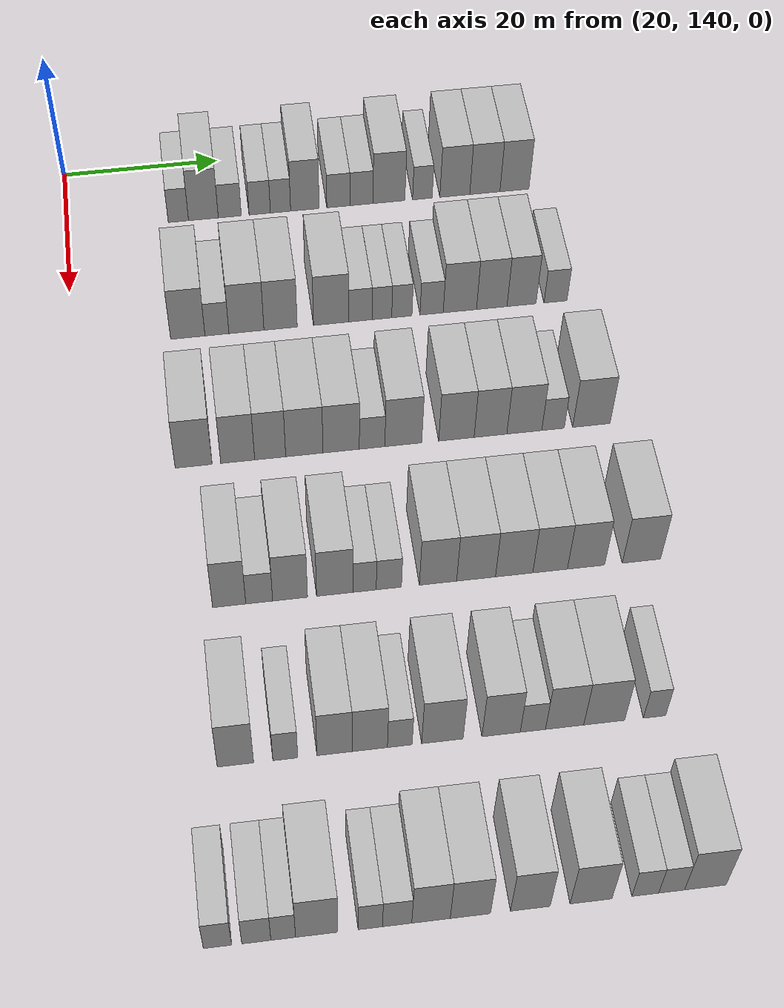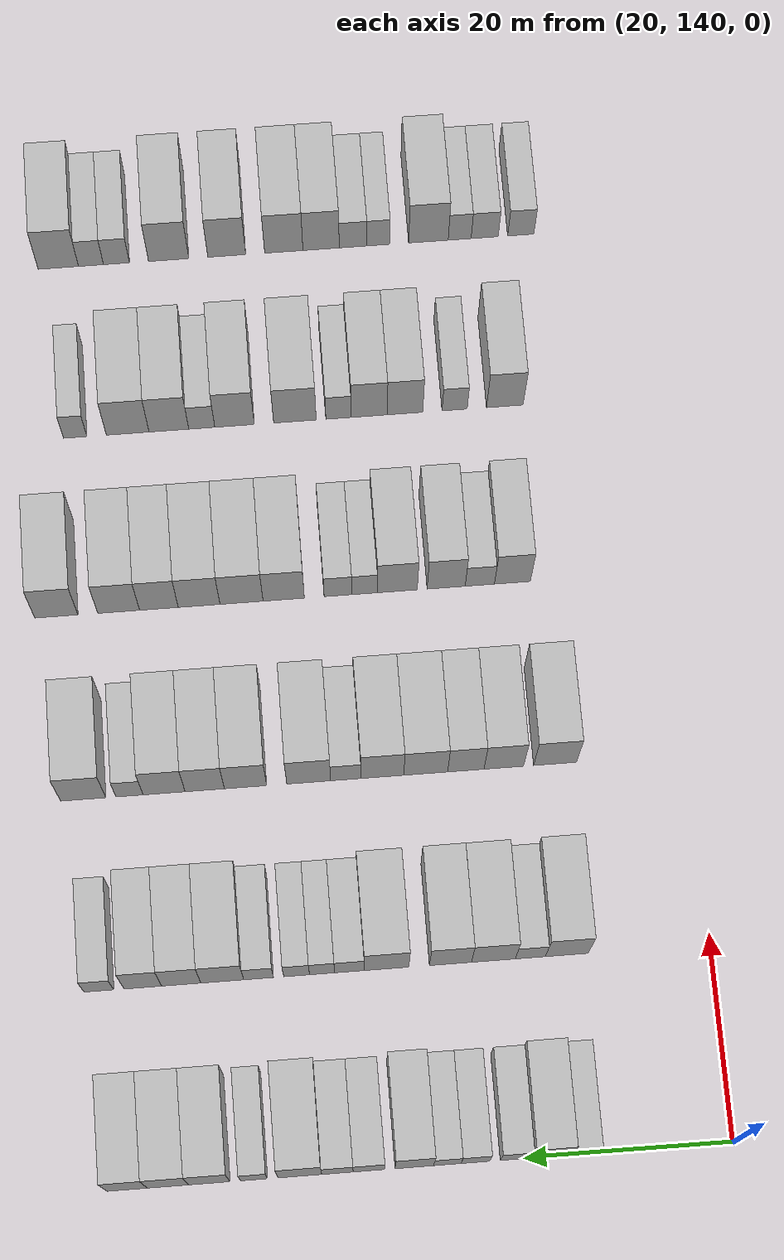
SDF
<sdf version="1.6">
 <world name="default">
  <model name="building_124">
   <static>1</static>
   <pose>25.0000 154.1969 0 0.000000 0.000000 0.000000</pose>
   <link name="link">
    <pose>0 0 3.00 0 0 0</pose>
    <collision name="collision"><geometry><box><size>10.0000 2.5885 6.0000</size></box></geometry></collision>
    <visual name="visual">
     <cast_shadows>0</cast_shadows>
     <geometry><box><size>10.0000 2.5885 6.0000</size></box></geometry>
     <material>
      <script>
       <uri>model://HANNAS_wall/materials/scripts</uri>
       <uri>model://HANNAS_wall/materials/textures</uri>
       <name>vrc/HANNAS_wall</name>
      </script>
     </material>
    </visual>
   </link>
  </model>
  <model name="building_125">
   <static>1</static>
   <pose>25.0000 157.3900 0 0.000000 0.000000 0.000000</pose>
   <link name="link">
    <pose>0 0 4.50 0 0 0</pose>
    <collision name="collision"><geometry><box><size>10.0000 3.7978 9.0000</size></box></geometry></collision>
    <visual name="visual">
     <cast_shadows>0</cast_shadows>
     <geometry><box><size>10.0000 3.7978 9.0000</size></box></geometry>
     <material>
      <script>
       <uri>model://HANNAS_wall/materials/scripts</uri>
       <uri>model://HANNAS_wall/materials/textures</uri>
       <name>vrc/HANNAS_wall</name>
      </script>
     </material>
    </visual>
   </link>
  </model>
  <model name="building_126">
   <static>1</static>
   <pose>25.0000 160.7644 0 0.000000 0.000000 0.000000</pose>
   <link name="link">
    <pose>0 0 3.00 0 0 0</pose>
    <collision name="collision"><geometry><box><size>10.0000 2.9510 6.0000</size></box></geometry></collision>
    <visual name="visual">
     <cast_shadows>0</cast_shadows>
     <geometry><box><size>10.0000 2.9510 6.0000</size></box></geometry>
     <material>
      <script>
       <uri>model://HANNAS_wall/materials/scripts</uri>
       <uri>model://HANNAS_wall/materials/textures</uri>
       <name>vrc/HANNAS_wall</name>
      </script>
     </material>
    </visual>
   </link>
  </model>
  <model name="building_127">
   <static>1</static>
   <pose>25.0000 164.6057 0 0.000000 0.000000 0.000000</pose>
   <link name="link">
    <pose>0 0 3.00 0 0 0</pose>
    <collision name="collision"><geometry><box><size>10.0000 2.7316 6.0000</size></box></geometry></collision>
    <visual name="visual">
     <cast_shadows>0</cast_shadows>
     <geometry><box><size>10.0000 2.7316 6.0000</size></box></geometry>
     <material>
      <script>
       <uri>model://HANNAS_wall/materials/scripts</uri>
       <uri>model://HANNAS_wall/materials/textures</uri>
       <name>vrc/HANNAS_wall</name>
      </script>
     </material>
    </visual>
   </link>
  </model>
  <model name="building_128">
   <static>1</static>
   <pose>25.0000 167.2755 0 0.000000 0.000000 0.000000</pose>
   <link name="link">
    <pose>0 0 3.00 0 0 0</pose>
    <collision name="collision"><geometry><box><size>10.0000 2.6079 6.0000</size></box></geometry></collision>
    <visual name="visual">
     <cast_shadows>0</cast_shadows>
     <geometry><box><size>10.0000 2.6079 6.0000</size></box></geometry>
     <material>
      <script>
       <uri>model://HANNAS_wall/materials/scripts</uri>
       <uri>model://HANNAS_wall/materials/textures</uri>
       <name>vrc/HANNAS_wall</name>
      </script>
     </material>
    </visual>
   </link>
  </model>
  <model name="building_129">
   <static>1</static>
   <pose>25.0000 170.4129 0 0.000000 0.000000 0.000000</pose>
   <link name="link">
    <pose>0 0 4.50 0 0 0</pose>
    <collision name="collision"><geometry><box><size>10.0000 3.6670 9.0000</size></box></geometry></collision>
    <visual name="visual">
     <cast_shadows>0</cast_shadows>
     <geometry><box><size>10.0000 3.6670 9.0000</size></box></geometry>
     <material>
      <script>
       <uri>model://HANNAS_wall/materials/scripts</uri>
       <uri>model://HANNAS_wall/materials/textures</uri>
       <name>vrc/HANNAS_wall</name>
      </script>
     </material>
    </visual>
   </link>
  </model>
  <model name="building_130">
   <static>1</static>
   <pose>25.0000 174.7386 0 0.000000 0.000000 0.000000</pose>
   <link name="link">
    <pose>0 0 3.00 0 0 0</pose>
    <collision name="collision"><geometry><box><size>10.0000 2.9844 6.0000</size></box></geometry></collision>
    <visual name="visual">
     <cast_shadows>0</cast_shadows>
     <geometry><box><size>10.0000 2.9844 6.0000</size></box></geometry>
     <material>
      <script>
       <uri>model://HANNAS_wall/materials/scripts</uri>
       <uri>model://HANNAS_wall/materials/textures</uri>
       <name>vrc/HANNAS_wall</name>
      </script>
     </material>
    </visual>
   </link>
  </model>
  <model name="building_131">
   <static>1</static>
   <pose>25.0000 177.7188 0 0.000000 0.000000 0.000000</pose>
   <link name="link">
    <pose>0 0 3.00 0 0 0</pose>
    <collision name="collision"><geometry><box><size>10.0000 2.9760 6.0000</size></box></geometry></collision>
    <visual name="visual">
     <cast_shadows>0</cast_shadows>
     <geometry><box><size>10.0000 2.9760 6.0000</size></box></geometry>
     <material>
      <script>
       <uri>model://HANNAS_wall/materials/scripts</uri>
       <uri>model://HANNAS_wall/materials/textures</uri>
       <name>vrc/HANNAS_wall</name>
      </script>
     </material>
    </visual>
   </link>
  </model>
  <model name="building_132">
   <static>1</static>
   <pose>25.0000 181.2805 0 0.000000 0.000000 0.000000</pose>
   <link name="link">
    <pose>0 0 4.50 0 0 0</pose>
    <collision name="collision"><geometry><box><size>10.0000 4.1474 9.0000</size></box></geometry></collision>
    <visual name="visual">
     <cast_shadows>0</cast_shadows>
     <geometry><box><size>10.0000 4.1474 9.0000</size></box></geometry>
     <material>
      <script>
       <uri>model://HANNAS_wall/materials/scripts</uri>
       <uri>model://HANNAS_wall/materials/textures</uri>
       <name>vrc/HANNAS_wall</name>
      </script>
     </material>
    </visual>
   </link>
  </model>
  <model name="building_133">
   <static>1</static>
   <pose>25.0000 185.6301 0 0.000000 0.000000 0.000000</pose>
   <link name="link">
    <pose>0 0 3.00 0 0 0</pose>
    <collision name="collision"><geometry><box><size>10.0000 2.5518 6.0000</size></box></geometry></collision>
    <visual name="visual">
     <cast_shadows>0</cast_shadows>
     <geometry><box><size>10.0000 2.5518 6.0000</size></box></geometry>
     <material>
      <script>
       <uri>model://HANNAS_wall/materials/scripts</uri>
       <uri>model://HANNAS_wall/materials/textures</uri>
       <name>vrc/HANNAS_wall</name>
      </script>
     </material>
    </visual>
   </link>
  </model>
  <model name="building_134">
   <static>1</static>
   <pose>25.0000 189.8566 0 0.000000 0.000000 0.000000</pose>
   <link name="link">
    <pose>0 0 4.50 0 0 0</pose>
    <collision name="collision"><geometry><box><size>10.0000 3.9012 9.0000</size></box></geometry></collision>
    <visual name="visual">
     <cast_shadows>0</cast_shadows>
     <geometry><box><size>10.0000 3.9012 9.0000</size></box></geometry>
     <material>
      <script>
       <uri>model://HANNAS_wall/materials/scripts</uri>
       <uri>model://HANNAS_wall/materials/textures</uri>
       <name>vrc/HANNAS_wall</name>
      </script>
     </material>
    </visual>
   </link>
  </model>
  <model name="building_135">
   <static>1</static>
   <pose>25.0000 193.7774 0 0.000000 0.000000 0.000000</pose>
   <link name="link">
    <pose>0 0 4.50 0 0 0</pose>
    <collision name="collision"><geometry><box><size>10.0000 3.9404 9.0000</size></box></geometry></collision>
    <visual name="visual">
     <cast_shadows>0</cast_shadows>
     <geometry><box><size>10.0000 3.9404 9.0000</size></box></geometry>
     <material>
      <script>
       <uri>model://HANNAS_wall/materials/scripts</uri>
       <uri>model://HANNAS_wall/materials/textures</uri>
       <name>vrc/HANNAS_wall</name>
      </script>
     </material>
    </visual>
   </link>
  </model>
  <model name="building_136">
   <static>1</static>
   <pose>25.0000 197.6484 0 0.000000 0.000000 0.000000</pose>
   <link name="link">
    <pose>0 0 4.50 0 0 0</pose>
    <collision name="collision"><geometry><box><size>10.0000 3.8018 9.0000</size></box></geometry></collision>
    <visual name="visual">
     <cast_shadows>0</cast_shadows>
     <geometry><box><size>10.0000 3.8018 9.0000</size></box></geometry>
     <material>
      <script>
       <uri>model://HANNAS_wall/materials/scripts</uri>
       <uri>model://HANNAS_wall/materials/textures</uri>
       <name>vrc/HANNAS_wall</name>
      </script>
     </material>
    </visual>
   </link>
  </model>
  <model name="building_296">
   <static>1</static>
   <pose>44.0000 154.0123 0 0.000000 0.000000 0.000000</pose>
   <link name="link">
    <pose>0 0 4.50 0 0 0</pose>
    <collision name="collision"><geometry><box><size>10.0000 4.1790 9.0000</size></box></geometry></collision>
    <visual name="visual">
     <cast_shadows>0</cast_shadows>
     <geometry><box><size>10.0000 4.1790 9.0000</size></box></geometry>
     <material>
      <script>
       <uri>model://HANNAS_wall/materials/scripts</uri>
       <uri>model://HANNAS_wall/materials/textures</uri>
       <name>vrc/HANNAS_wall</name>
      </script>
     </material>
    </visual>
   </link>
  </model>
  <model name="building_297">
   <static>1</static>
   <pose>44.0000 157.5596 0 0.000000 0.000000 0.000000</pose>
   <link name="link">
    <pose>0 0 3.00 0 0 0</pose>
    <collision name="collision"><geometry><box><size>10.0000 2.9157 6.0000</size></box></geometry></collision>
    <visual name="visual">
     <cast_shadows>0</cast_shadows>
     <geometry><box><size>10.0000 2.9157 6.0000</size></box></geometry>
     <material>
      <script>
       <uri>model://HANNAS_wall/materials/scripts</uri>
       <uri>model://HANNAS_wall/materials/textures</uri>
       <name>vrc/HANNAS_wall</name>
      </script>
     </material>
    </visual>
   </link>
  </model>
  <model name="building_298">
   <static>1</static>
   <pose>44.0000 161.1566 0 0.000000 0.000000 0.000000</pose>
   <link name="link">
    <pose>0 0 4.50 0 0 0</pose>
    <collision name="collision"><geometry><box><size>10.0000 4.2783 9.0000</size></box></geometry></collision>
    <visual name="visual">
     <cast_shadows>0</cast_shadows>
     <geometry><box><size>10.0000 4.2783 9.0000</size></box></geometry>
     <material>
      <script>
       <uri>model://HANNAS_wall/materials/scripts</uri>
       <uri>model://HANNAS_wall/materials/textures</uri>
       <name>vrc/HANNAS_wall</name>
      </script>
     </material>
    </visual>
   </link>
  </model>
  <model name="building_299">
   <static>1</static>
   <pose>44.0000 165.3366 0 0.000000 0.000000 0.000000</pose>
   <link name="link">
    <pose>0 0 4.50 0 0 0</pose>
    <collision name="collision"><geometry><box><size>10.0000 4.0816 9.0000</size></box></geometry></collision>
    <visual name="visual">
     <cast_shadows>0</cast_shadows>
     <geometry><box><size>10.0000 4.0816 9.0000</size></box></geometry>
     <material>
      <script>
       <uri>model://HANNAS_wall/materials/scripts</uri>
       <uri>model://HANNAS_wall/materials/textures</uri>
       <name>vrc/HANNAS_wall</name>
      </script>
     </material>
    </visual>
   </link>
  </model>
  <model name="building_300">
   <static>1</static>
   <pose>44.0000 171.5460 0 0.000000 0.000000 0.000000</pose>
   <link name="link">
    <pose>0 0 4.50 0 0 0</pose>
    <collision name="collision"><geometry><box><size>10.0000 4.3372 9.0000</size></box></geometry></collision>
    <visual name="visual">
     <cast_shadows>0</cast_shadows>
     <geometry><box><size>10.0000 4.3372 9.0000</size></box></geometry>
     <material>
      <script>
       <uri>model://HANNAS_wall/materials/scripts</uri>
       <uri>model://HANNAS_wall/materials/textures</uri>
       <name>vrc/HANNAS_wall</name>
      </script>
     </material>
    </visual>
   </link>
  </model>
  <model name="building_301">
   <static>1</static>
   <pose>44.0000 175.1518 0 0.000000 0.000000 0.000000</pose>
   <link name="link">
    <pose>0 0 3.00 0 0 0</pose>
    <collision name="collision"><geometry><box><size>10.0000 2.8745 6.0000</size></box></geometry></collision>
    <visual name="visual">
     <cast_shadows>0</cast_shadows>
     <geometry><box><size>10.0000 2.8745 6.0000</size></box></geometry>
     <material>
      <script>
       <uri>model://HANNAS_wall/materials/scripts</uri>
       <uri>model://HANNAS_wall/materials/textures</uri>
       <name>vrc/HANNAS_wall</name>
      </script>
     </material>
    </visual>
   </link>
  </model>
  <model name="building_302">
   <static>1</static>
   <pose>44.0000 177.8020 0 0.000000 0.000000 0.000000</pose>
   <link name="link">
    <pose>0 0 3.00 0 0 0</pose>
    <collision name="collision"><geometry><box><size>10.0000 2.4257 6.0000</size></box></geometry></collision>
    <visual name="visual">
     <cast_shadows>0</cast_shadows>
     <geometry><box><size>10.0000 2.4257 6.0000</size></box></geometry>
     <material>
      <script>
       <uri>model://HANNAS_wall/materials/scripts</uri>
       <uri>model://HANNAS_wall/materials/textures</uri>
       <name>vrc/HANNAS_wall</name>
      </script>
     </material>
    </visual>
   </link>
  </model>
  <model name="building_303">
   <static>1</static>
   <pose>44.0000 180.2664 0 0.000000 0.000000 0.000000</pose>
   <link name="link">
    <pose>0 0 3.00 0 0 0</pose>
    <collision name="collision"><geometry><box><size>10.0000 2.5031 6.0000</size></box></geometry></collision>
    <visual name="visual">
     <cast_shadows>0</cast_shadows>
     <geometry><box><size>10.0000 2.5031 6.0000</size></box></geometry>
     <material>
      <script>
       <uri>model://HANNAS_wall/materials/scripts</uri>
       <uri>model://HANNAS_wall/materials/textures</uri>
       <name>vrc/HANNAS_wall</name>
      </script>
     </material>
    </visual>
   </link>
  </model>
  <model name="building_304">
   <static>1</static>
   <pose>44.0000 183.9565 0 0.000000 0.000000 0.000000</pose>
   <link name="link">
    <pose>0 0 3.00 0 0 0</pose>
    <collision name="collision"><geometry><box><size>10.0000 2.8772 6.0000</size></box></geometry></collision>
    <visual name="visual">
     <cast_shadows>0</cast_shadows>
     <geometry><box><size>10.0000 2.8772 6.0000</size></box></geometry>
     <material>
      <script>
       <uri>model://HANNAS_wall/materials/scripts</uri>
       <uri>model://HANNAS_wall/materials/textures</uri>
       <name>vrc/HANNAS_wall</name>
      </script>
     </material>
    </visual>
   </link>
  </model>
  <model name="building_305">
   <static>1</static>
   <pose>44.0000 187.4661 0 0.000000 0.000000 0.000000</pose>
   <link name="link">
    <pose>0 0 4.50 0 0 0</pose>
    <collision name="collision"><geometry><box><size>10.0000 4.1420 9.0000</size></box></geometry></collision>
    <visual name="visual">
     <cast_shadows>0</cast_shadows>
     <geometry><box><size>10.0000 4.1420 9.0000</size></box></geometry>
     <material>
      <script>
       <uri>model://HANNAS_wall/materials/scripts</uri>
       <uri>model://HANNAS_wall/materials/textures</uri>
       <name>vrc/HANNAS_wall</name>
      </script>
     </material>
    </visual>
   </link>
  </model>
  <model name="building_306">
   <static>1</static>
   <pose>44.0000 191.4358 0 0.000000 0.000000 0.000000</pose>
   <link name="link">
    <pose>0 0 4.50 0 0 0</pose>
    <collision name="collision"><geometry><box><size>10.0000 3.7973 9.0000</size></box></geometry></collision>
    <visual name="visual">
     <cast_shadows>0</cast_shadows>
     <geometry><box><size>10.0000 3.7973 9.0000</size></box></geometry>
     <material>
      <script>
       <uri>model://HANNAS_wall/materials/scripts</uri>
       <uri>model://HANNAS_wall/materials/textures</uri>
       <name>vrc/HANNAS_wall</name>
      </script>
     </material>
    </visual>
   </link>
  </model>
  <model name="building_307">
   <static>1</static>
   <pose>44.0000 195.1491 0 0.000000 0.000000 0.000000</pose>
   <link name="link">
    <pose>0 0 4.50 0 0 0</pose>
    <collision name="collision"><geometry><box><size>10.0000 3.6293 9.0000</size></box></geometry></collision>
    <visual name="visual">
     <cast_shadows>0</cast_shadows>
     <geometry><box><size>10.0000 3.6293 9.0000</size></box></geometry>
     <material>
      <script>
       <uri>model://HANNAS_wall/materials/scripts</uri>
       <uri>model://HANNAS_wall/materials/textures</uri>
       <name>vrc/HANNAS_wall</name>
      </script>
     </material>
    </visual>
   </link>
  </model>
  <model name="building_308">
   <static>1</static>
   <pose>44.0000 199.4026 0 0.000000 0.000000 0.000000</pose>
   <link name="link">
    <pose>0 0 3.00 0 0 0</pose>
    <collision name="collision"><geometry><box><size>10.0000 2.8777 6.0000</size></box></geometry></collision>
    <visual name="visual">
     <cast_shadows>0</cast_shadows>
     <geometry><box><size>10.0000 2.8777 6.0000</size></box></geometry>
     <material>
      <script>
       <uri>model://HANNAS_wall/materials/scripts</uri>
       <uri>model://HANNAS_wall/materials/textures</uri>
       <name>vrc/HANNAS_wall</name>
      </script>
     </material>
    </visual>
   </link>
  </model>
  <model name="building_462">
   <static>1</static>
   <pose>63.0000 153.3006 0 0.000000 0.000000 0.000000</pose>
   <link name="link">
    <pose>0 0 4.50 0 0 0</pose>
    <collision name="collision"><geometry><box><size>10.0000 4.2686 9.0000</size></box></geometry></collision>
    <visual name="visual">
     <cast_shadows>0</cast_shadows>
     <geometry><box><size>10.0000 4.2686 9.0000</size></box></geometry>
     <material>
      <script>
       <uri>model://HANNAS_wall/materials/scripts</uri>
       <uri>model://HANNAS_wall/materials/textures</uri>
       <name>vrc/HANNAS_wall</name>
      </script>
     </material>
    </visual>
   </link>
  </model>
  <model name="building_463">
   <static>1</static>
   <pose>63.0000 158.4048 0 0.000000 0.000000 0.000000</pose>
   <link name="link">
    <pose>0 0 4.50 0 0 0</pose>
    <collision name="collision"><geometry><box><size>10.0000 3.9400 9.0000</size></box></geometry></collision>
    <visual name="visual">
     <cast_shadows>0</cast_shadows>
     <geometry><box><size>10.0000 3.9400 9.0000</size></box></geometry>
     <material>
      <script>
       <uri>model://HANNAS_wall/materials/scripts</uri>
       <uri>model://HANNAS_wall/materials/textures</uri>
       <name>vrc/HANNAS_wall</name>
      </script>
     </material>
    </visual>
   </link>
  </model>
  <model name="building_464">
   <static>1</static>
   <pose>63.0000 162.1786 0 0.000000 0.000000 0.000000</pose>
   <link name="link">
    <pose>0 0 4.50 0 0 0</pose>
    <collision name="collision"><geometry><box><size>10.0000 3.6076 9.0000</size></box></geometry></collision>
    <visual name="visual">
     <cast_shadows>0</cast_shadows>
     <geometry><box><size>10.0000 3.6076 9.0000</size></box></geometry>
     <material>
      <script>
       <uri>model://HANNAS_wall/materials/scripts</uri>
       <uri>model://HANNAS_wall/materials/textures</uri>
       <name>vrc/HANNAS_wall</name>
      </script>
     </material>
    </visual>
   </link>
  </model>
  <model name="building_465">
   <static>1</static>
   <pose>63.0000 166.1559 0 0.000000 0.000000 0.000000</pose>
   <link name="link">
    <pose>0 0 4.50 0 0 0</pose>
    <collision name="collision"><geometry><box><size>10.0000 4.3470 9.0000</size></box></geometry></collision>
    <visual name="visual">
     <cast_shadows>0</cast_shadows>
     <geometry><box><size>10.0000 4.3470 9.0000</size></box></geometry>
     <material>
      <script>
       <uri>model://HANNAS_wall/materials/scripts</uri>
       <uri>model://HANNAS_wall/materials/textures</uri>
       <name>vrc/HANNAS_wall</name>
      </script>
     </material>
    </visual>
   </link>
  </model>
  <model name="building_466">
   <static>1</static>
   <pose>63.0000 170.4562 0 0.000000 0.000000 0.000000</pose>
   <link name="link">
    <pose>0 0 4.50 0 0 0</pose>
    <collision name="collision"><geometry><box><size>10.0000 4.2536 9.0000</size></box></geometry></collision>
    <visual name="visual">
     <cast_shadows>0</cast_shadows>
     <geometry><box><size>10.0000 4.2536 9.0000</size></box></geometry>
     <material>
      <script>
       <uri>model://HANNAS_wall/materials/scripts</uri>
       <uri>model://HANNAS_wall/materials/textures</uri>
       <name>vrc/HANNAS_wall</name>
      </script>
     </material>
    </visual>
   </link>
  </model>
  <model name="building_467">
   <static>1</static>
   <pose>63.0000 174.0810 0 0.000000 0.000000 0.000000</pose>
   <link name="link">
    <pose>0 0 3.00 0 0 0</pose>
    <collision name="collision"><geometry><box><size>10.0000 2.9959 6.0000</size></box></geometry></collision>
    <visual name="visual">
     <cast_shadows>0</cast_shadows>
     <geometry><box><size>10.0000 2.9959 6.0000</size></box></geometry>
     <material>
      <script>
       <uri>model://HANNAS_wall/materials/scripts</uri>
       <uri>model://HANNAS_wall/materials/textures</uri>
       <name>vrc/HANNAS_wall</name>
      </script>
     </material>
    </visual>
   </link>
  </model>
  <model name="building_468">
   <static>1</static>
   <pose>63.0000 177.7470 0 0.000000 0.000000 0.000000</pose>
   <link name="link">
    <pose>0 0 4.50 0 0 0</pose>
    <collision name="collision"><geometry><box><size>10.0000 4.3361 9.0000</size></box></geometry></collision>
    <visual name="visual">
     <cast_shadows>0</cast_shadows>
     <geometry><box><size>10.0000 4.3361 9.0000</size></box></geometry>
     <material>
      <script>
       <uri>model://HANNAS_wall/materials/scripts</uri>
       <uri>model://HANNAS_wall/materials/textures</uri>
       <name>vrc/HANNAS_wall</name>
      </script>
     </material>
    </visual>
   </link>
  </model>
  <model name="building_469">
   <static>1</static>
   <pose>63.0000 184.0059 0 0.000000 0.000000 0.000000</pose>
   <link name="link">
    <pose>0 0 4.50 0 0 0</pose>
    <collision name="collision"><geometry><box><size>10.0000 4.1819 9.0000</size></box></geometry></collision>
    <visual name="visual">
     <cast_shadows>0</cast_shadows>
     <geometry><box><size>10.0000 4.1819 9.0000</size></box></geometry>
     <material>
      <script>
       <uri>model://HANNAS_wall/materials/scripts</uri>
       <uri>model://HANNAS_wall/materials/textures</uri>
       <name>vrc/HANNAS_wall</name>
      </script>
     </material>
    </visual>
   </link>
  </model>
  <model name="building_470">
   <static>1</static>
   <pose>63.0000 188.0366 0 0.000000 0.000000 0.000000</pose>
   <link name="link">
    <pose>0 0 4.50 0 0 0</pose>
    <collision name="collision"><geometry><box><size>10.0000 3.8794 9.0000</size></box></geometry></collision>
    <visual name="visual">
     <cast_shadows>0</cast_shadows>
     <geometry><box><size>10.0000 3.8794 9.0000</size></box></geometry>
     <material>
      <script>
       <uri>model://HANNAS_wall/materials/scripts</uri>
       <uri>model://HANNAS_wall/materials/textures</uri>
       <name>vrc/HANNAS_wall</name>
      </script>
     </material>
    </visual>
   </link>
  </model>
  <model name="building_471">
   <static>1</static>
   <pose>63.0000 192.0502 0 0.000000 0.000000 0.000000</pose>
   <link name="link">
    <pose>0 0 4.50 0 0 0</pose>
    <collision name="collision"><geometry><box><size>10.0000 4.1479 9.0000</size></box></geometry></collision>
    <visual name="visual">
     <cast_shadows>0</cast_shadows>
     <geometry><box><size>10.0000 4.1479 9.0000</size></box></geometry>
     <material>
      <script>
       <uri>model://HANNAS_wall/materials/scripts</uri>
       <uri>model://HANNAS_wall/materials/textures</uri>
       <name>vrc/HANNAS_wall</name>
      </script>
     </material>
    </visual>
   </link>
  </model>
  <model name="building_472">
   <static>1</static>
   <pose>63.0000 195.4631 0 0.000000 0.000000 0.000000</pose>
   <link name="link">
    <pose>0 0 3.00 0 0 0</pose>
    <collision name="collision"><geometry><box><size>10.0000 2.6780 6.0000</size></box></geometry></collision>
    <visual name="visual">
     <cast_shadows>0</cast_shadows>
     <geometry><box><size>10.0000 2.6780 6.0000</size></box></geometry>
     <material>
      <script>
       <uri>model://HANNAS_wall/materials/scripts</uri>
       <uri>model://HANNAS_wall/materials/textures</uri>
       <name>vrc/HANNAS_wall</name>
      </script>
     </material>
    </visual>
   </link>
  </model>
  <model name="building_473">
   <static>1</static>
   <pose>63.0000 200.0333 0 0.000000 0.000000 0.000000</pose>
   <link name="link">
    <pose>0 0 4.50 0 0 0</pose>
    <collision name="collision"><geometry><box><size>10.0000 4.4623 9.0000</size></box></geometry></collision>
    <visual name="visual">
     <cast_shadows>0</cast_shadows>
     <geometry><box><size>10.0000 4.4623 9.0000</size></box></geometry>
     <material>
      <script>
       <uri>model://HANNAS_wall/materials/scripts</uri>
       <uri>model://HANNAS_wall/materials/textures</uri>
       <name>vrc/HANNAS_wall</name>
      </script>
     </material>
    </visual>
   </link>
  </model>
  <model name="building_638">
   <static>1</static>
   <pose>82.0000 155.7808 0 0.000000 0.000000 0.000000</pose>
   <link name="link">
    <pose>0 0 4.50 0 0 0</pose>
    <collision name="collision"><geometry><box><size>10.0000 3.6506 9.0000</size></box></geometry></collision>
    <visual name="visual">
     <cast_shadows>0</cast_shadows>
     <geometry><box><size>10.0000 3.6506 9.0000</size></box></geometry>
     <material>
      <script>
       <uri>model://HANNAS_wall/materials/scripts</uri>
       <uri>model://HANNAS_wall/materials/textures</uri>
       <name>vrc/HANNAS_wall</name>
      </script>
     </material>
    </visual>
   </link>
  </model>
  <model name="building_639">
   <static>1</static>
   <pose>82.0000 159.0854 0 0.000000 0.000000 0.000000</pose>
   <link name="link">
    <pose>0 0 3.00 0 0 0</pose>
    <collision name="collision"><geometry><box><size>10.0000 2.9586 6.0000</size></box></geometry></collision>
    <visual name="visual">
     <cast_shadows>0</cast_shadows>
     <geometry><box><size>10.0000 2.9586 6.0000</size></box></geometry>
     <material>
      <script>
       <uri>model://HANNAS_wall/materials/scripts</uri>
       <uri>model://HANNAS_wall/materials/textures</uri>
       <name>vrc/HANNAS_wall</name>
      </script>
     </material>
    </visual>
   </link>
  </model>
  <model name="building_640">
   <static>1</static>
   <pose>82.0000 162.4907 0 0.000000 0.000000 0.000000</pose>
   <link name="link">
    <pose>0 0 4.50 0 0 0</pose>
    <collision name="collision"><geometry><box><size>10.0000 3.8518 9.0000</size></box></geometry></collision>
    <visual name="visual">
     <cast_shadows>0</cast_shadows>
     <geometry><box><size>10.0000 3.8518 9.0000</size></box></geometry>
     <material>
      <script>
       <uri>model://HANNAS_wall/materials/scripts</uri>
       <uri>model://HANNAS_wall/materials/textures</uri>
       <name>vrc/HANNAS_wall</name>
      </script>
     </material>
    </visual>
   </link>
  </model>
  <model name="building_641">
   <static>1</static>
   <pose>82.0000 167.4409 0 0.000000 0.000000 0.000000</pose>
   <link name="link">
    <pose>0 0 4.50 0 0 0</pose>
    <collision name="collision"><geometry><box><size>10.0000 4.0486 9.0000</size></box></geometry></collision>
    <visual name="visual">
     <cast_shadows>0</cast_shadows>
     <geometry><box><size>10.0000 4.0486 9.0000</size></box></geometry>
     <material>
      <script>
       <uri>model://HANNAS_wall/materials/scripts</uri>
       <uri>model://HANNAS_wall/materials/textures</uri>
       <name>vrc/HANNAS_wall</name>
      </script>
     </material>
    </visual>
   </link>
  </model>
  <model name="building_642">
   <static>1</static>
   <pose>82.0000 170.7500 0 0.000000 0.000000 0.000000</pose>
   <link name="link">
    <pose>0 0 3.00 0 0 0</pose>
    <collision name="collision"><geometry><box><size>10.0000 2.5697 6.0000</size></box></geometry></collision>
    <visual name="visual">
     <cast_shadows>0</cast_shadows>
     <geometry><box><size>10.0000 2.5697 6.0000</size></box></geometry>
     <material>
      <script>
       <uri>model://HANNAS_wall/materials/scripts</uri>
       <uri>model://HANNAS_wall/materials/textures</uri>
       <name>vrc/HANNAS_wall</name>
      </script>
     </material>
    </visual>
   </link>
  </model>
  <model name="building_643">
   <static>1</static>
   <pose>82.0000 173.4378 0 0.000000 0.000000 0.000000</pose>
   <link name="link">
    <pose>0 0 3.00 0 0 0</pose>
    <collision name="collision"><geometry><box><size>10.0000 2.8058 6.0000</size></box></geometry></collision>
    <visual name="visual">
     <cast_shadows>0</cast_shadows>
     <geometry><box><size>10.0000 2.8058 6.0000</size></box></geometry>
     <material>
      <script>
       <uri>model://HANNAS_wall/materials/scripts</uri>
       <uri>model://HANNAS_wall/materials/textures</uri>
       <name>vrc/HANNAS_wall</name>
      </script>
     </material>
    </visual>
   </link>
  </model>
  <model name="building_644">
   <static>1</static>
   <pose>82.0000 178.9235 0 0.000000 0.000000 0.000000</pose>
   <link name="link">
    <pose>0 0 4.50 0 0 0</pose>
    <collision name="collision"><geometry><box><size>10.0000 4.1656 9.0000</size></box></geometry></collision>
    <visual name="visual">
     <cast_shadows>0</cast_shadows>
     <geometry><box><size>10.0000 4.1656 9.0000</size></box></geometry>
     <material>
      <script>
       <uri>model://HANNAS_wall/materials/scripts</uri>
       <uri>model://HANNAS_wall/materials/textures</uri>
       <name>vrc/HANNAS_wall</name>
      </script>
     </material>
    </visual>
   </link>
  </model>
  <model name="building_645">
   <static>1</static>
   <pose>82.0000 183.1836 0 0.000000 0.000000 0.000000</pose>
   <link name="link">
    <pose>0 0 4.50 0 0 0</pose>
    <collision name="collision"><geometry><box><size>10.0000 4.3546 9.0000</size></box></geometry></collision>
    <visual name="visual">
     <cast_shadows>0</cast_shadows>
     <geometry><box><size>10.0000 4.3546 9.0000</size></box></geometry>
     <material>
      <script>
       <uri>model://HANNAS_wall/materials/scripts</uri>
       <uri>model://HANNAS_wall/materials/textures</uri>
       <name>vrc/HANNAS_wall</name>
      </script>
     </material>
    </visual>
   </link>
  </model>
  <model name="building_646">
   <static>1</static>
   <pose>82.0000 187.4615 0 0.000000 0.000000 0.000000</pose>
   <link name="link">
    <pose>0 0 4.50 0 0 0</pose>
    <collision name="collision"><geometry><box><size>10.0000 4.2013 9.0000</size></box></geometry></collision>
    <visual name="visual">
     <cast_shadows>0</cast_shadows>
     <geometry><box><size>10.0000 4.2013 9.0000</size></box></geometry>
     <material>
      <script>
       <uri>model://HANNAS_wall/materials/scripts</uri>
       <uri>model://HANNAS_wall/materials/textures</uri>
       <name>vrc/HANNAS_wall</name>
      </script>
     </material>
    </visual>
   </link>
  </model>
  <model name="building_647">
   <static>1</static>
   <pose>82.0000 191.5135 0 0.000000 0.000000 0.000000</pose>
   <link name="link">
    <pose>0 0 4.50 0 0 0</pose>
    <collision name="collision"><geometry><box><size>10.0000 3.9028 9.0000</size></box></geometry></collision>
    <visual name="visual">
     <cast_shadows>0</cast_shadows>
     <geometry><box><size>10.0000 3.9028 9.0000</size></box></geometry>
     <material>
      <script>
       <uri>model://HANNAS_wall/materials/scripts</uri>
       <uri>model://HANNAS_wall/materials/textures</uri>
       <name>vrc/HANNAS_wall</name>
      </script>
     </material>
    </visual>
   </link>
  </model>
  <model name="building_648">
   <static>1</static>
   <pose>82.0000 195.5693 0 0.000000 0.000000 0.000000</pose>
   <link name="link">
    <pose>0 0 4.50 0 0 0</pose>
    <collision name="collision"><geometry><box><size>10.0000 4.2087 9.0000</size></box></geometry></collision>
    <visual name="visual">
     <cast_shadows>0</cast_shadows>
     <geometry><box><size>10.0000 4.2087 9.0000</size></box></geometry>
     <material>
      <script>
       <uri>model://HANNAS_wall/materials/scripts</uri>
       <uri>model://HANNAS_wall/materials/textures</uri>
       <name>vrc/HANNAS_wall</name>
      </script>
     </material>
    </visual>
   </link>
  </model>
  <model name="building_649">
   <static>1</static>
   <pose>82.0000 201.8489 0 0.000000 0.000000 0.000000</pose>
   <link name="link">
    <pose>0 0 4.50 0 0 0</pose>
    <collision name="collision"><geometry><box><size>10.0000 4.3504 9.0000</size></box></geometry></collision>
    <visual name="visual">
     <cast_shadows>0</cast_shadows>
     <geometry><box><size>10.0000 4.3504 9.0000</size></box></geometry>
     <material>
      <script>
       <uri>model://HANNAS_wall/materials/scripts</uri>
       <uri>model://HANNAS_wall/materials/textures</uri>
       <name>vrc/HANNAS_wall</name>
      </script>
     </material>
    </visual>
   </link>
  </model>
  <model name="building_810">
   <static>1</static>
   <pose>101.0000 154.7965 0 0.000000 0.000000 0.000000</pose>
   <link name="link">
    <pose>0 0 4.50 0 0 0</pose>
    <collision name="collision"><geometry><box><size>10.0000 3.7797 9.0000</size></box></geometry></collision>
    <visual name="visual">
     <cast_shadows>0</cast_shadows>
     <geometry><box><size>10.0000 3.7797 9.0000</size></box></geometry>
     <material>
      <script>
       <uri>model://HANNAS_wall/materials/scripts</uri>
       <uri>model://HANNAS_wall/materials/textures</uri>
       <name>vrc/HANNAS_wall</name>
      </script>
     </material>
    </visual>
   </link>
  </model>
  <model name="building_811">
   <static>1</static>
   <pose>101.0000 159.9849 0 0.000000 0.000000 0.000000</pose>
   <link name="link">
    <pose>0 0 3.00 0 0 0</pose>
    <collision name="collision"><geometry><box><size>10.0000 2.5970 6.0000</size></box></geometry></collision>
    <visual name="visual">
     <cast_shadows>0</cast_shadows>
     <geometry><box><size>10.0000 2.5970 6.0000</size></box></geometry>
     <material>
      <script>
       <uri>model://HANNAS_wall/materials/scripts</uri>
       <uri>model://HANNAS_wall/materials/textures</uri>
       <name>vrc/HANNAS_wall</name>
      </script>
     </material>
    </visual>
   </link>
  </model>
  <model name="building_812">
   <static>1</static>
   <pose>101.0000 165.1190 0 0.000000 0.000000 0.000000</pose>
   <link name="link">
    <pose>0 0 4.50 0 0 0</pose>
    <collision name="collision"><geometry><box><size>10.0000 3.6713 9.0000</size></box></geometry></collision>
    <visual name="visual">
     <cast_shadows>0</cast_shadows>
     <geometry><box><size>10.0000 3.6713 9.0000</size></box></geometry>
     <material>
      <script>
       <uri>model://HANNAS_wall/materials/scripts</uri>
       <uri>model://HANNAS_wall/materials/textures</uri>
       <name>vrc/HANNAS_wall</name>
      </script>
     </material>
    </visual>
   </link>
  </model>
  <model name="building_813">
   <static>1</static>
   <pose>101.0000 168.8149 0 0.000000 0.000000 0.000000</pose>
   <link name="link">
    <pose>0 0 4.50 0 0 0</pose>
    <collision name="collision"><geometry><box><size>10.0000 3.7205 9.0000</size></box></geometry></collision>
    <visual name="visual">
     <cast_shadows>0</cast_shadows>
     <geometry><box><size>10.0000 3.7205 9.0000</size></box></geometry>
     <material>
      <script>
       <uri>model://HANNAS_wall/materials/scripts</uri>
       <uri>model://HANNAS_wall/materials/textures</uri>
       <name>vrc/HANNAS_wall</name>
      </script>
     </material>
    </visual>
   </link>
  </model>
  <model name="building_814">
   <static>1</static>
   <pose>101.0000 171.9769 0 0.000000 0.000000 0.000000</pose>
   <link name="link">
    <pose>0 0 3.00 0 0 0</pose>
    <collision name="collision"><geometry><box><size>10.0000 2.6034 6.0000</size></box></geometry></collision>
    <visual name="visual">
     <cast_shadows>0</cast_shadows>
     <geometry><box><size>10.0000 2.6034 6.0000</size></box></geometry>
     <material>
      <script>
       <uri>model://HANNAS_wall/materials/scripts</uri>
       <uri>model://HANNAS_wall/materials/textures</uri>
       <name>vrc/HANNAS_wall</name>
      </script>
     </material>
    </visual>
   </link>
  </model>
  <model name="building_815">
   <static>1</static>
   <pose>101.0000 176.4680 0 0.000000 0.000000 0.000000</pose>
   <link name="link">
    <pose>0 0 4.50 0 0 0</pose>
    <collision name="collision"><geometry><box><size>10.0000 4.3789 9.0000</size></box></geometry></collision>
    <visual name="visual">
     <cast_shadows>0</cast_shadows>
     <geometry><box><size>10.0000 4.3789 9.0000</size></box></geometry>
     <material>
      <script>
       <uri>model://HANNAS_wall/materials/scripts</uri>
       <uri>model://HANNAS_wall/materials/textures</uri>
       <name>vrc/HANNAS_wall</name>
      </script>
     </material>
    </visual>
   </link>
  </model>
  <model name="building_816">
   <static>1</static>
   <pose>101.0000 182.6903 0 0.000000 0.000000 0.000000</pose>
   <link name="link">
    <pose>0 0 4.50 0 0 0</pose>
    <collision name="collision"><geometry><box><size>10.0000 4.0656 9.0000</size></box></geometry></collision>
    <visual name="visual">
     <cast_shadows>0</cast_shadows>
     <geometry><box><size>10.0000 4.0656 9.0000</size></box></geometry>
     <material>
      <script>
       <uri>model://HANNAS_wall/materials/scripts</uri>
       <uri>model://HANNAS_wall/materials/textures</uri>
       <name>vrc/HANNAS_wall</name>
      </script>
     </material>
    </visual>
   </link>
  </model>
  <model name="building_817">
   <static>1</static>
   <pose>101.0000 186.0655 0 0.000000 0.000000 0.000000</pose>
   <link name="link">
    <pose>0 0 3.00 0 0 0</pose>
    <collision name="collision"><geometry><box><size>10.0000 2.6848 6.0000</size></box></geometry></collision>
    <visual name="visual">
     <cast_shadows>0</cast_shadows>
     <geometry><box><size>10.0000 2.6848 6.0000</size></box></geometry>
     <material>
      <script>
       <uri>model://HANNAS_wall/materials/scripts</uri>
       <uri>model://HANNAS_wall/materials/textures</uri>
       <name>vrc/HANNAS_wall</name>
      </script>
     </material>
    </visual>
   </link>
  </model>
  <model name="building_818">
   <static>1</static>
   <pose>101.0000 189.4489 0 0.000000 0.000000 0.000000</pose>
   <link name="link">
    <pose>0 0 4.50 0 0 0</pose>
    <collision name="collision"><geometry><box><size>10.0000 4.0820 9.0000</size></box></geometry></collision>
    <visual name="visual">
     <cast_shadows>0</cast_shadows>
     <geometry><box><size>10.0000 4.0820 9.0000</size></box></geometry>
     <material>
      <script>
       <uri>model://HANNAS_wall/materials/scripts</uri>
       <uri>model://HANNAS_wall/materials/textures</uri>
       <name>vrc/HANNAS_wall</name>
      </script>
     </material>
    </visual>
   </link>
  </model>
  <model name="building_819">
   <static>1</static>
   <pose>101.0000 193.6843 0 0.000000 0.000000 0.000000</pose>
   <link name="link">
    <pose>0 0 4.50 0 0 0</pose>
    <collision name="collision"><geometry><box><size>10.0000 4.3888 9.0000</size></box></geometry></collision>
    <visual name="visual">
     <cast_shadows>0</cast_shadows>
     <geometry><box><size>10.0000 4.3888 9.0000</size></box></geometry>
     <material>
      <script>
       <uri>model://HANNAS_wall/materials/scripts</uri>
       <uri>model://HANNAS_wall/materials/textures</uri>
       <name>vrc/HANNAS_wall</name>
      </script>
     </material>
    </visual>
   </link>
  </model>
  <model name="building_820">
   <static>1</static>
   <pose>101.0000 199.0788 0 0.000000 0.000000 0.000000</pose>
   <link name="link">
    <pose>0 0 3.00 0 0 0</pose>
    <collision name="collision"><geometry><box><size>10.0000 2.4001 6.0000</size></box></geometry></collision>
    <visual name="visual">
     <cast_shadows>0</cast_shadows>
     <geometry><box><size>10.0000 2.4001 6.0000</size></box></geometry>
     <material>
      <script>
       <uri>model://HANNAS_wall/materials/scripts</uri>
       <uri>model://HANNAS_wall/materials/textures</uri>
       <name>vrc/HANNAS_wall</name>
      </script>
     </material>
    </visual>
   </link>
  </model>
  <model name="building_984">
   <static>1</static>
   <pose>120.0000 151.3604 0 0.000000 0.000000 0.000000</pose>
   <link name="link">
    <pose>0 0 3.00 0 0 0</pose>
    <collision name="collision"><geometry><box><size>10.0000 2.7641 6.0000</size></box></geometry></collision>
    <visual name="visual">
     <cast_shadows>0</cast_shadows>
     <geometry><box><size>10.0000 2.7641 6.0000</size></box></geometry>
     <material>
      <script>
       <uri>model://HANNAS_wall/materials/scripts</uri>
       <uri>model://HANNAS_wall/materials/textures</uri>
       <name>vrc/HANNAS_wall</name>
      </script>
     </material>
    </visual>
   </link>
  </model>
  <model name="building_985">
   <static>1</static>
   <pose>120.0000 155.1670 0 0.000000 0.000000 0.000000</pose>
   <link name="link">
    <pose>0 0 3.00 0 0 0</pose>
    <collision name="collision"><geometry><box><size>10.0000 2.8489 6.0000</size></box></geometry></collision>
    <visual name="visual">
     <cast_shadows>0</cast_shadows>
     <geometry><box><size>10.0000 2.8489 6.0000</size></box></geometry>
     <material>
      <script>
       <uri>model://HANNAS_wall/materials/scripts</uri>
       <uri>model://HANNAS_wall/materials/textures</uri>
       <name>vrc/HANNAS_wall</name>
      </script>
     </material>
    </visual>
   </link>
  </model>
  <model name="building_986">
   <static>1</static>
   <pose>120.0000 157.8023 0 0.000000 0.000000 0.000000</pose>
   <link name="link">
    <pose>0 0 3.00 0 0 0</pose>
    <collision name="collision"><geometry><box><size>10.0000 2.4218 6.0000</size></box></geometry></collision>
    <visual name="visual">
     <cast_shadows>0</cast_shadows>
     <geometry><box><size>10.0000 2.4218 6.0000</size></box></geometry>
     <material>
      <script>
       <uri>model://HANNAS_wall/materials/scripts</uri>
       <uri>model://HANNAS_wall/materials/textures</uri>
       <name>vrc/HANNAS_wall</name>
      </script>
     </material>
    </visual>
   </link>
  </model>
  <model name="building_987">
   <static>1</static>
   <pose>120.0000 161.0962 0 0.000000 0.000000 0.000000</pose>
   <link name="link">
    <pose>0 0 4.50 0 0 0</pose>
    <collision name="collision"><geometry><box><size>10.0000 4.1660 9.0000</size></box></geometry></collision>
    <visual name="visual">
     <cast_shadows>0</cast_shadows>
     <geometry><box><size>10.0000 4.1660 9.0000</size></box></geometry>
     <material>
      <script>
       <uri>model://HANNAS_wall/materials/scripts</uri>
       <uri>model://HANNAS_wall/materials/textures</uri>
       <name>vrc/HANNAS_wall</name>
      </script>
     </material>
    </visual>
   </link>
  </model>
  <model name="building_988">
   <static>1</static>
   <pose>120.0000 166.3841 0 0.000000 0.000000 0.000000</pose>
   <link name="link">
    <pose>0 0 3.00 0 0 0</pose>
    <collision name="collision"><geometry><box><size>10.0000 2.4097 6.0000</size></box></geometry></collision>
    <visual name="visual">
     <cast_shadows>0</cast_shadows>
     <geometry><box><size>10.0000 2.4097 6.0000</size></box></geometry>
     <material>
      <script>
       <uri>model://HANNAS_wall/materials/scripts</uri>
       <uri>model://HANNAS_wall/materials/textures</uri>
       <name>vrc/HANNAS_wall</name>
      </script>
     </material>
    </visual>
   </link>
  </model>
  <model name="building_989">
   <static>1</static>
   <pose>120.0000 169.0370 0 0.000000 0.000000 0.000000</pose>
   <link name="link">
    <pose>0 0 3.00 0 0 0</pose>
    <collision name="collision"><geometry><box><size>10.0000 2.8960 6.0000</size></box></geometry></collision>
    <visual name="visual">
     <cast_shadows>0</cast_shadows>
     <geometry><box><size>10.0000 2.8960 6.0000</size></box></geometry>
     <material>
      <script>
       <uri>model://HANNAS_wall/materials/scripts</uri>
       <uri>model://HANNAS_wall/materials/textures</uri>
       <name>vrc/HANNAS_wall</name>
      </script>
     </material>
    </visual>
   </link>
  </model>
  <model name="building_990">
   <static>1</static>
   <pose>120.0000 172.3953 0 0.000000 0.000000 0.000000</pose>
   <link name="link">
    <pose>0 0 4.50 0 0 0</pose>
    <collision name="collision"><geometry><box><size>10.0000 3.8208 9.0000</size></box></geometry></collision>
    <visual name="visual">
     <cast_shadows>0</cast_shadows>
     <geometry><box><size>10.0000 3.8208 9.0000</size></box></geometry>
     <material>
      <script>
       <uri>model://HANNAS_wall/materials/scripts</uri>
       <uri>model://HANNAS_wall/materials/textures</uri>
       <name>vrc/HANNAS_wall</name>
      </script>
     </material>
    </visual>
   </link>
  </model>
  <model name="building_991">
   <static>1</static>
   <pose>120.0000 176.3149 0 0.000000 0.000000 0.000000</pose>
   <link name="link">
    <pose>0 0 4.50 0 0 0</pose>
    <collision name="collision"><geometry><box><size>10.0000 4.0184 9.0000</size></box></geometry></collision>
    <visual name="visual">
     <cast_shadows>0</cast_shadows>
     <geometry><box><size>10.0000 4.0184 9.0000</size></box></geometry>
     <material>
      <script>
       <uri>model://HANNAS_wall/materials/scripts</uri>
       <uri>model://HANNAS_wall/materials/textures</uri>
       <name>vrc/HANNAS_wall</name>
      </script>
     </material>
    </visual>
   </link>
  </model>
  <model name="building_992">
   <static>1</static>
   <pose>120.0000 182.3110 0 0.000000 0.000000 0.000000</pose>
   <link name="link">
    <pose>0 0 4.50 0 0 0</pose>
    <collision name="collision"><geometry><box><size>10.0000 3.9738 9.0000</size></box></geometry></collision>
    <visual name="visual">
     <cast_shadows>0</cast_shadows>
     <geometry><box><size>10.0000 3.9738 9.0000</size></box></geometry>
     <material>
      <script>
       <uri>model://HANNAS_wall/materials/scripts</uri>
       <uri>model://HANNAS_wall/materials/textures</uri>
       <name>vrc/HANNAS_wall</name>
      </script>
     </material>
    </visual>
   </link>
  </model>
  <model name="building_993">
   <static>1</static>
   <pose>120.0000 188.4090 0 0.000000 0.000000 0.000000</pose>
   <link name="link">
    <pose>0 0 4.50 0 0 0</pose>
    <collision name="collision"><geometry><box><size>10.0000 4.2223 9.0000</size></box></geometry></collision>
    <visual name="visual">
     <cast_shadows>0</cast_shadows>
     <geometry><box><size>10.0000 4.2223 9.0000</size></box></geometry>
     <material>
      <script>
       <uri>model://HANNAS_wall/materials/scripts</uri>
       <uri>model://HANNAS_wall/materials/textures</uri>
       <name>vrc/HANNAS_wall</name>
      </script>
     </material>
    </visual>
   </link>
  </model>
  <model name="building_994">
   <static>1</static>
   <pose>120.0000 193.8808 0 0.000000 0.000000 0.000000</pose>
   <link name="link">
    <pose>0 0 3.00 0 0 0</pose>
    <collision name="collision"><geometry><box><size>10.0000 2.7214 6.0000</size></box></geometry></collision>
    <visual name="visual">
     <cast_shadows>0</cast_shadows>
     <geometry><box><size>10.0000 2.7214 6.0000</size></box></geometry>
     <material>
      <script>
       <uri>model://HANNAS_wall/materials/scripts</uri>
       <uri>model://HANNAS_wall/materials/textures</uri>
       <name>vrc/HANNAS_wall</name>
      </script>
     </material>
    </visual>
   </link>
  </model>
  <model name="building_995">
   <static>1</static>
   <pose>120.0000 196.5521 0 0.000000 0.000000 0.000000</pose>
   <link name="link">
    <pose>0 0 3.00 0 0 0</pose>
    <collision name="collision"><geometry><box><size>10.0000 2.6213 6.0000</size></box></geometry></collision>
    <visual name="visual">
     <cast_shadows>0</cast_shadows>
     <geometry><box><size>10.0000 2.6213 6.0000</size></box></geometry>
     <material>
      <script>
       <uri>model://HANNAS_wall/materials/scripts</uri>
       <uri>model://HANNAS_wall/materials/textures</uri>
       <name>vrc/HANNAS_wall</name>
      </script>
     </material>
    </visual>
   </link>
  </model>
  <model name="building_996">
   <static>1</static>
   <pose>120.0000 199.9748 0 0.000000 0.000000 0.000000</pose>
   <link name="link">
    <pose>0 0 4.50 0 0 0</pose>
    <collision name="collision"><geometry><box><size>10.0000 4.2241 9.0000</size></box></geometry></collision>
    <visual name="visual">
     <cast_shadows>0</cast_shadows>
     <geometry><box><size>10.0000 4.2241 9.0000</size></box></geometry>
     <material>
      <script>
       <uri>model://HANNAS_wall/materials/scripts</uri>
       <uri>model://HANNAS_wall/materials/textures</uri>
       <name>vrc/HANNAS_wall</name>
      </script>
     </material>
    </visual>
   </link>
  </model>
 </world>
</sdf>
